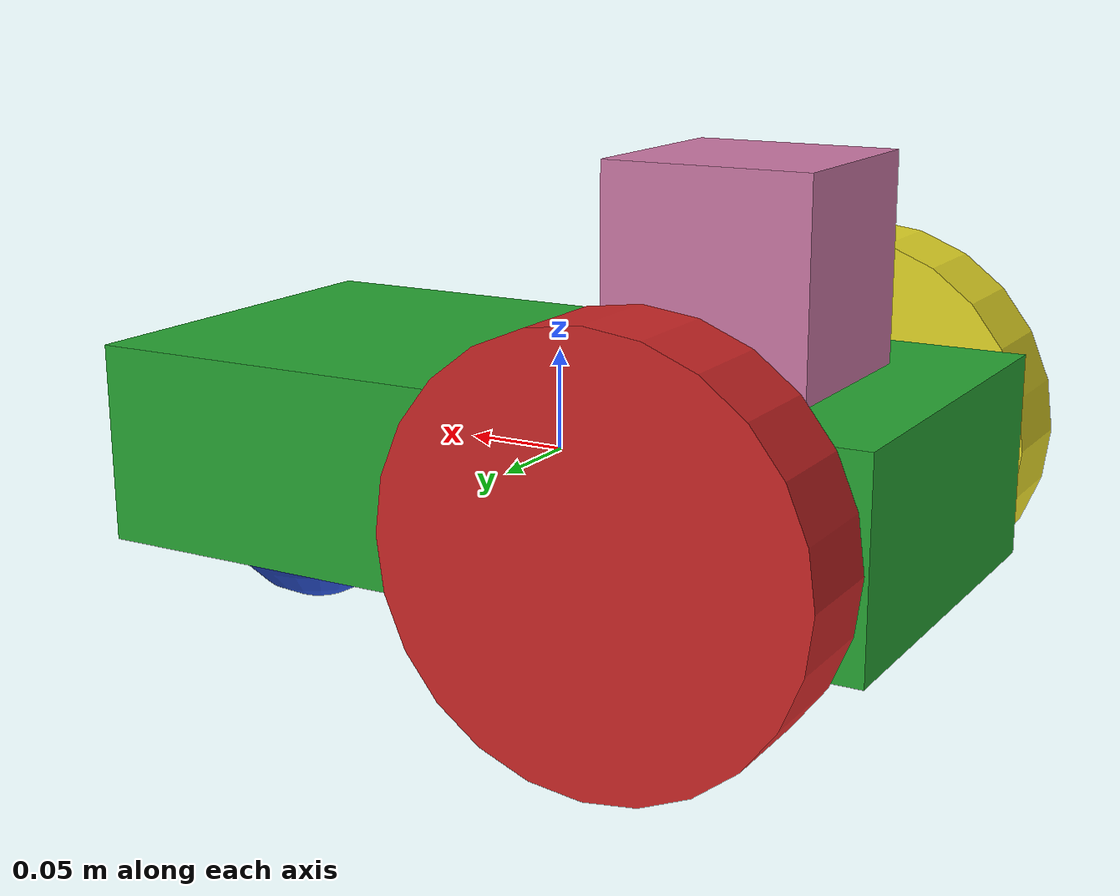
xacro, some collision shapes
<?xml version="1.0"?>
<robot name="simple_robot" xmlns:xacro="http://www.ros.org/wiki/xacro">

<xacro:property name="PI" value="3.1415926535897931"/>

    <!-- Start of Links - first link must be a non-inertial link -->
    <link name='base_link'>
    </link>
	  <link name='base_footprint'>
    </link>

    <link name="chassis">
        <inertial>
            <mass value="1"/>
            <inertia ixx="0.004" ixy="0.0" ixz="0.0" iyy="0.004" iyz="0.0" izz="0.002"/>
        </inertial>
        <collision name="chassis">
            <geometry>
                <box size=".4 .2 .1" />
            </geometry>
        </collision>
        <visual name="chassis">
            <geometry>
                <box size=".4 .2 .1" />
            </geometry>
        </visual>
    </link>

    <link name="castor">
        <inertial>
            <mass value=".1"/>
            <inertia ixx="0.004" ixy="0.0" ixz="0.0" iyy="0.004" iyz="0.0" izz="0.002"/>
        </inertial>
        <collision name="castor">
            <geometry>
                <sphere radius=".05" />
            </geometry>
        </collision>
        <visual name="castor">
            <geometry>
                <sphere radius=".05" />
            </geometry>
        </visual>
    </link>

    <link name="left_wheel">
        <inertial>
            <mass value=".5"/>
            <inertia ixx="0.004" ixy="0.0" ixz="0.0" iyy="0.004" iyz="0.0" izz="0.002"/>
        </inertial>
        <pose>0.1 0.13 0.1 0 1.5707 1.5707</pose>
        <collision name="left_wheel">
            <geometry>
                <cylinder radius='.1' length='.05'/>
            </geometry>
        </collision>
        <visual name="left_wheel">
            <geometry>
                <cylinder radius='.1' length='.05'/>
            </geometry>
        </visual>
    </link>

    <link name="right_wheel">
        <inertial>
            <mass value=".5"/>
            <inertia ixx="0.004" ixy="0.0" ixz="0.0" iyy="0.004" iyz="0.0" izz="0.002"/>
        </inertial>
        <pose>0.1 0.13 0.1 0 1.5707 1.5707</pose>
        <collision name="right_wheel">
            <geometry>
                <cylinder radius='.1' length='.05'/>
            </geometry>
        </collision>
        <visual name="right_wheel">
            <geometry>
                <cylinder radius='.1' length='.05'/>
            </geometry>
        </visual>
    </link>

  <!-- Hokuyo Laser -->
  <link name="hokuyo_link">
    <collision>
      <origin xyz="0 0 0" rpy="0 0 0"/>
      <geometry>
    <box size="0.1 0.1 0.1"/>
      </geometry>
    </collision>

    <visual>
      <origin xyz="0 0 0" rpy="0 0 0"/>
      <geometry>
        <mesh filename="package://simple_robot_nav2_ros2/meshes/hokuyo.dae"/>
      </geometry>
    </visual>

    <inertial>
      <mass value="1e-5" />
      <origin xyz="0 0 0" rpy="0 0 0"/>
      <inertia ixx="1e-6" ixy="0" ixz="0" iyy="1e-6" iyz="0" izz="1e-6" />
    </inertial>
  </link>

    <!-- Start of Joints - connecting all links together -->

    <joint name="joint0" type="fixed">
        <parent link="base_link"/>
        <child link="chassis"/>
        <origin xyz="0 0 0" rpy="0 0 0"/>
        <axis xyz="0 1 0"/>
        <dynamics damping="0.7"/>
    </joint>

    <joint name="jointA" type="fixed">
        <parent link="base_link"/>
        <child link="base_footprint"/>
        <origin xyz="0 0 0" rpy="0 0 0"/>
        <axis xyz="0 1 0"/>
        <dynamics damping="0.7"/>
    </joint>

    <joint name="joint1" type="fixed">
        <parent link="chassis"/>
        <child link="castor"/>
        <origin xyz=".15 0 -.05" rpy="0 0 0"/>
        <axis xyz="0 1 0"/>
        <dynamics damping="0.7"/>
    </joint>

    <joint type="continuous" name="wheel_left_joint">
        <parent link="chassis"/>
        <child link="left_wheel"/>
        <origin xyz="-0.1 0.13 0" rpy="0 1.5707 1.5707"/>
        <axis xyz="0 0 1"/>
        <calibration rising="0.0"/>
        <dynamics damping="0.0" friction="0.0"/>
        <limit effort="30" velocity="2.0" />
        <safety_controller k_velocity="10" k_position="15" soft_lower_limit="-2.0" soft_upper_limit="0.5" />
    </joint>

    <joint type="continuous" name="wheel_right_joint">
        <parent link="chassis"/>
        <child link="right_wheel"/>
        <origin xyz="-0.1 -0.13 0" rpy="0 1.5707 1.5707"/>
        <axis xyz="0 0 1"/>
        <calibration rising="0.0"/>
        <dynamics damping="0.0" friction="0.0"/>
        <limit effort="30" velocity="2.0" />
        <safety_controller k_velocity="10" k_position="15" soft_lower_limit="-2.0" soft_upper_limit="0.5" />
    </joint>
    <joint name="hokuyo_joint" type="fixed">
        <axis xyz="0 1 0" />
        <origin xyz="-0.1 0 .1" rpy="0 0 ${PI}"/>
        <parent link="base_link"/>
        <child link="hokuyo_link"/>
            <dynamics damping="0.7"/>
      </joint>

    <!-- Transmissions are where the ros_controller interacts -->
    <ros2_control name="GazeboSystem" type="system">
      <hardware>
        <plugin>gazebo_ros2_control/GazeboSystem</plugin>
      </hardware>
      <joint name="wheel_left_joint">
        <command_interface name="velocity">
          <param name="min">-1</param>
          <param name="max">1</param>
        </command_interface>
        <state_interface name="position">
          <param name="initial_value">0.0</param>
        </state_interface>
        <state_interface name="velocity">
          <param name="initial_value">0.0</param>
        </state_interface>
      </joint>
      <joint name="wheel_right_joint">
        <command_interface name="velocity">
          <param name="min">-1</param>
          <param name="max">1</param>
        </command_interface>
        <state_interface name="position">
          <param name="initial_value">0.0</param>
        </state_interface>
        <state_interface name="velocity">
          <param name="initial_value">0.0</param>
        </state_interface>
      </joint>
    </ros2_control>

  <gazebo>
    <!-- Joint state publisher -->
    <plugin filename="libgazebo_ros2_control.so" name="gazebo_ros2_control">
      <parameters>$(find simple_robot_nav2_ros2)/config/simple_diff_drive.yaml</parameters>
    </plugin>
  </gazebo>

  <gazebo reference="chassis">
  	<material>Gazebo/Green</material>
    	<mu1>.01</mu1>
    	<mu2>.01</mu2>
        <fdir1>0.000000 0.000000 0.000000</fdir1>
        <slip1>1.000000</slip1>
        <slip2>1.000000</slip2>
  </gazebo>

  <gazebo reference="left_wheel">
    	<material>Gazebo/Red</material>
    	<mu1>100000</mu1>
    	<mu2>100000</mu2>
        <fdir1>0.000000 0.000000 0.000000</fdir1>
        <slip1>0.000000</slip1>
        <slip2>0.000000</slip2>
  </gazebo>

  <gazebo reference="right_wheel">
    	<material>Gazebo/Yellow</material>
    	<mu1>100000</mu1>
    	<mu2>100000</mu2>
        <fdir1>0.000000 0.000000 0.000000</fdir1>
        <slip1>0.000000</slip1>
        <slip2>0.000000</slip2>
  </gazebo>
  <gazebo reference="castor">
  	<material>Gazebo/Blue</material>
    	<mu1>.01</mu1>
    	<mu2>.01</mu2>
        <fdir1>0.000000 0.000000 0.000000</fdir1>
        <slip1>1.000000</slip1>
        <slip2>1.000000</slip2>
  </gazebo>

<gazebo reference="hokuyo_link">
  <sensor name="lidar" type="ray">
    <pose>0.215 0 0.215 0 0 0</pose>
    <always_on>true</always_on>
    <visualize>true</visualize>
    <update_rate>5</update_rate>
    <ray>
      <scan>
        <horizontal>
          <samples>360</samples>
          <resolution>1.00000</resolution>
          <min_angle>0.000000</min_angle>
          <max_angle>6.280000</max_angle>
        </horizontal>
      </scan>
      <range>
        <min>0.120000</min>
        <max>3.5</max>
        <resolution>0.015000</resolution>
      </range>
      <noise>
        <type>gaussian</type>
        <mean>0.0</mean>
        <stddev>0.001</stddev>
      </noise>
    </ray>
    <plugin name="scan" filename="libgazebo_ros_ray_sensor.so">
      <ros>
        <remapping>~/out:=scan</remapping>
      </ros>
      <output_type>sensor_msgs/LaserScan</output_type>
      <frame_name>hokuyo_link</frame_name>
    </plugin>
  </sensor>
  </gazebo>

</robot>
